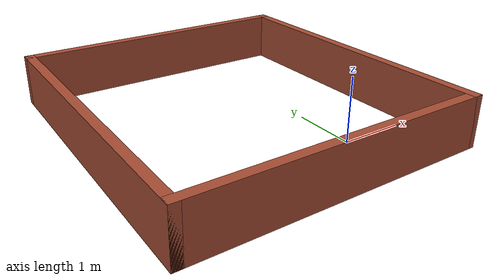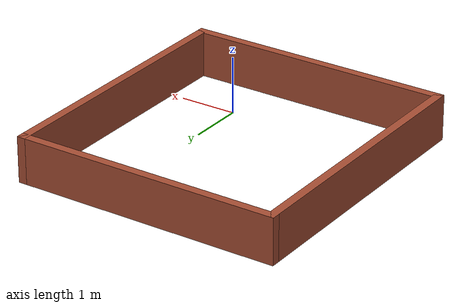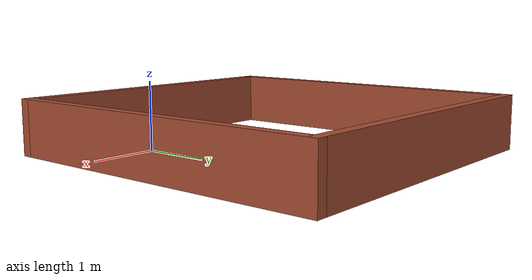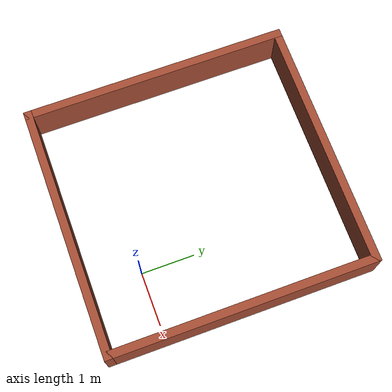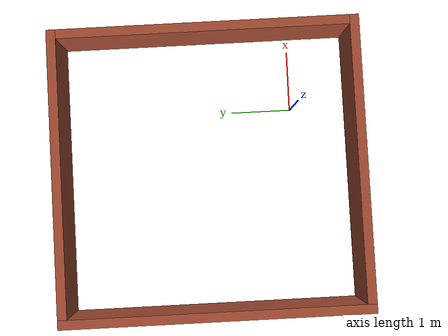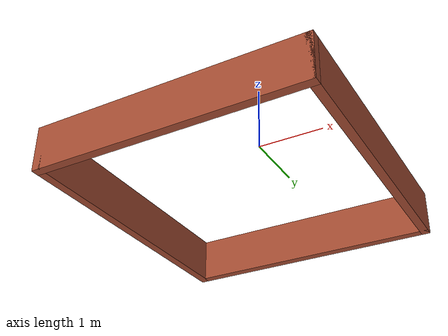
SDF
<?xml version='1.0'?>
<sdf version='1.7'>
  <model name='SafeAreaWall'>
    <pose>-1 1.43 0 0 -0 0</pose>
    <link name='Wall_0'>
      <collision name='Wall_0_Collision'>
        <geometry>
          <box>
            <size>4.75 0.15 0.8</size>
          </box>
        </geometry>
        <pose>0 0 0.4 0 -0 0</pose>
      </collision>
      <visual name='Wall_0_Visual'>
        <pose>0 0 0.4 0 -0 0</pose>
        <geometry>
          <box>
            <size>4.75 0.15 0.8</size>
          </box>
        </geometry>
        <material>
          <script>
            <uri>file://media/materials/scripts/gazebo.material</uri>
            <name>Gazebo/Bricks</name>
          </script>
          <ambient>1 1 1 1</ambient>
        </material>
        <meta>
          <layer>0</layer>
        </meta>
      </visual>
      <pose>0 2.43 0 0 -0 3.14159</pose>
    </link>
    <link name='Wall_3'>
      <collision name='Wall_3_Collision'>
        <geometry>
          <box>
            <size>5.01 0.15 0.8</size>
          </box>
        </geometry>
        <pose>0 0 0.4 0 -0 0</pose>
      </collision>
      <visual name='Wall_3_Visual'>
        <pose>0 0 0.4 0 -0 0</pose>
        <geometry>
          <box>
            <size>5.01 0.15 0.8</size>
          </box>
        </geometry>
        <material>
          <script>
            <uri>file://media/materials/scripts/gazebo.material</uri>
            <name>Gazebo/Bricks</name>
          </script>
          <ambient>1 1 1 1</ambient>
        </material>
        <meta>
          <layer>0</layer>
        </meta>
      </visual>
      <pose>-2.3 -0 0 0 -0 -1.5708</pose>
    </link>
    <link name='Wall_4'>
      <collision name='Wall_4_Collision'>
        <geometry>
          <box>
            <size>4.75 0.15 0.8</size>
          </box>
        </geometry>
        <pose>0 0 0.4 0 -0 0</pose>
      </collision>
      <visual name='Wall_4_Visual'>
        <pose>0 0 0.4 0 -0 0</pose>
        <geometry>
          <box>
            <size>4.75 0.15 0.8</size>
          </box>
        </geometry>
        <material>
          <script>
            <uri>file://media/materials/scripts/gazebo.material</uri>
            <name>Gazebo/Bricks</name>
          </script>
          <ambient>1 1 1 1</ambient>
        </material>
        <meta>
          <layer>0</layer>
        </meta>
      </visual>
      <pose>0 -2.43 0 0 -0 0</pose>
    </link>
    <link name='Wall_6'>
      <collision name='Wall_6_Collision'>
        <geometry>
          <box>
            <size>5.01 0.15 0.8</size>
          </box>
        </geometry>
        <pose>0 0 0.4 0 -0 0</pose>
      </collision>
      <visual name='Wall_6_Visual'>
        <pose>0 0 0.4 0 -0 0</pose>
        <geometry>
          <box>
            <size>5.01 0.15 0.8</size>
          </box>
        </geometry>
        <material>
          <script>
            <uri>file://media/materials/scripts/gazebo.material</uri>
            <name>Gazebo/Bricks</name>
          </script>
          <ambient>1 1 1 1</ambient>
        </material>
        <meta>
          <layer>0</layer>
        </meta>
      </visual>
      <pose>2.3 -0 0 0 -0 -1.5708</pose>
    </link>
    <static>1</static>
  </model>
</sdf>
